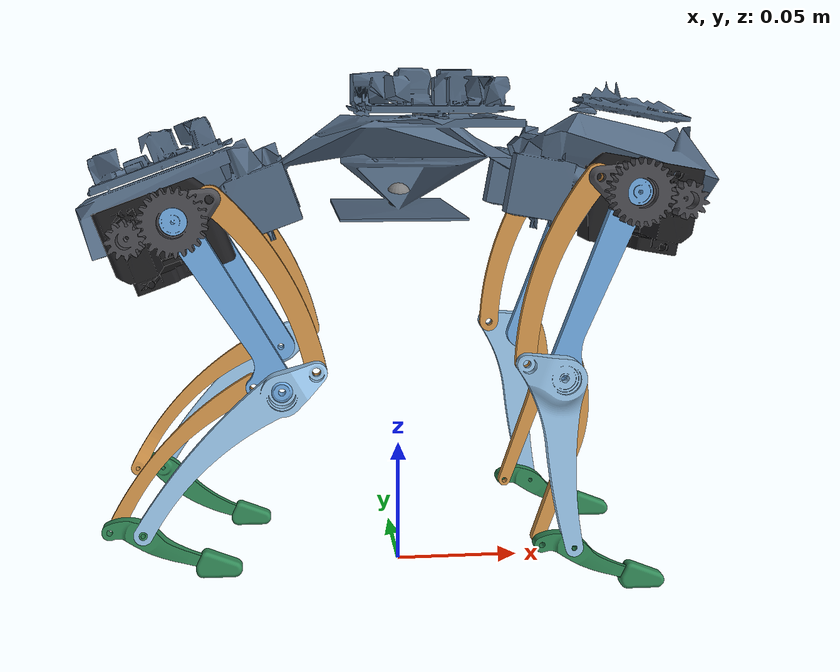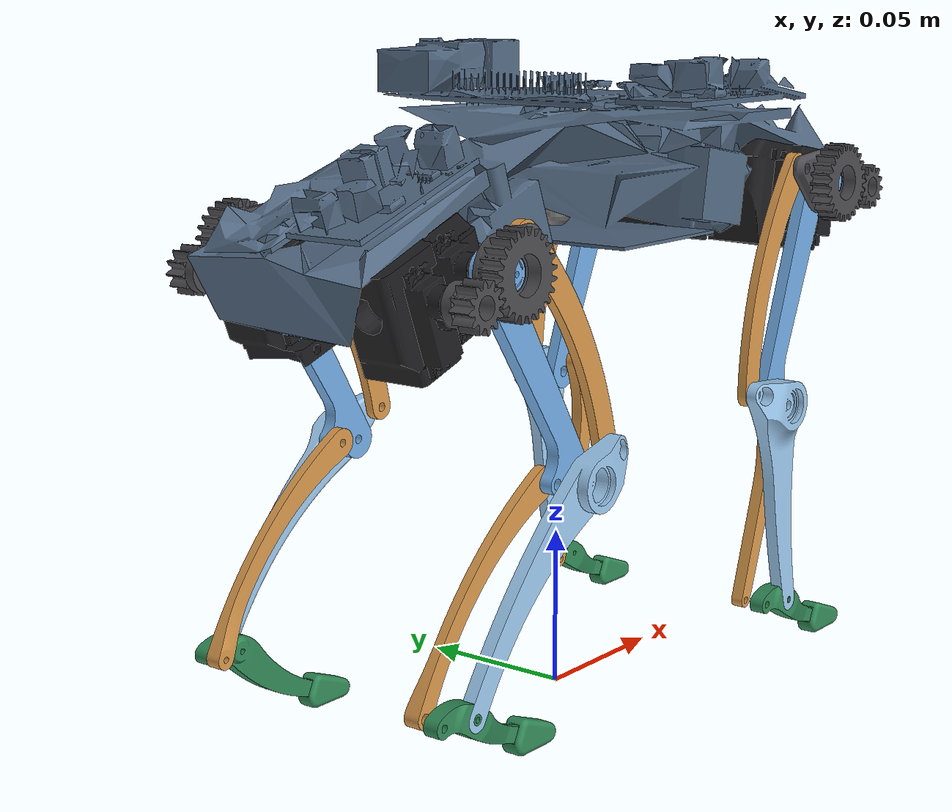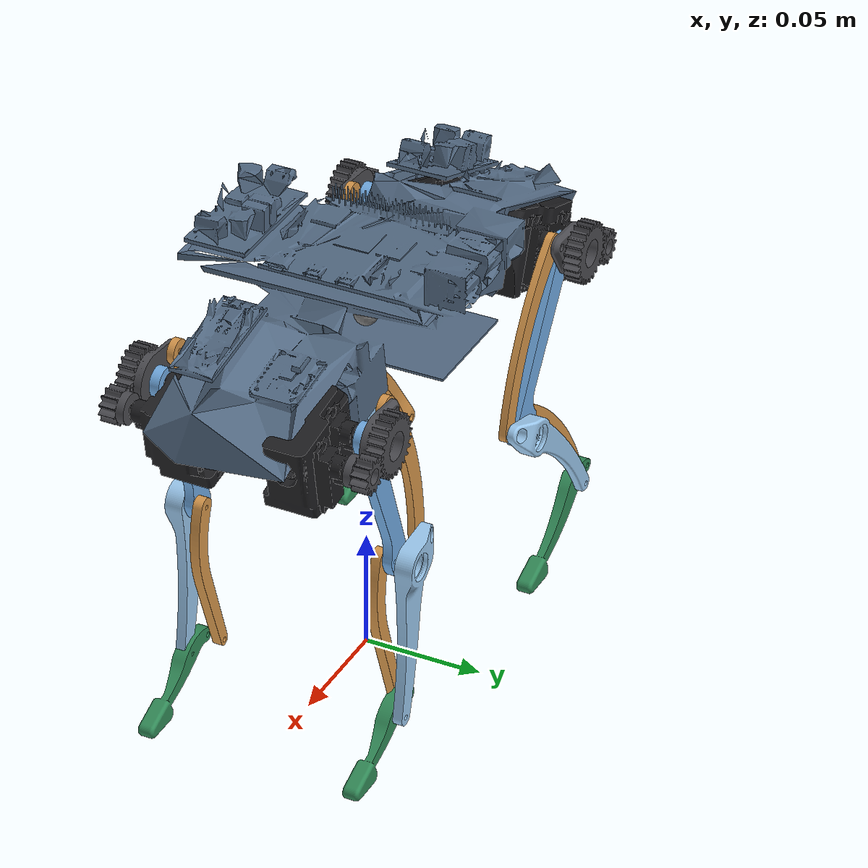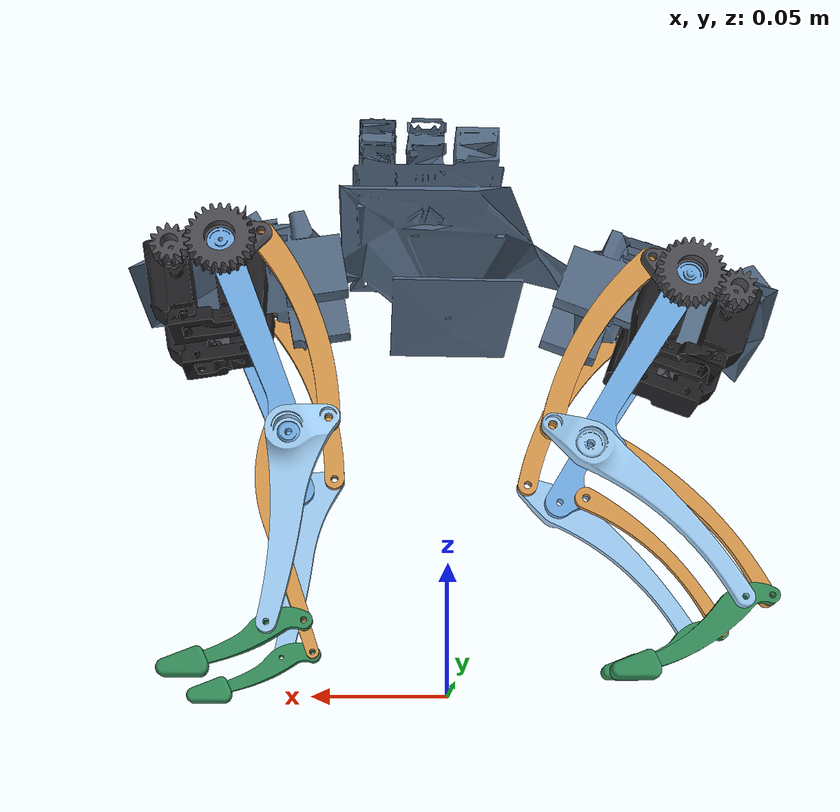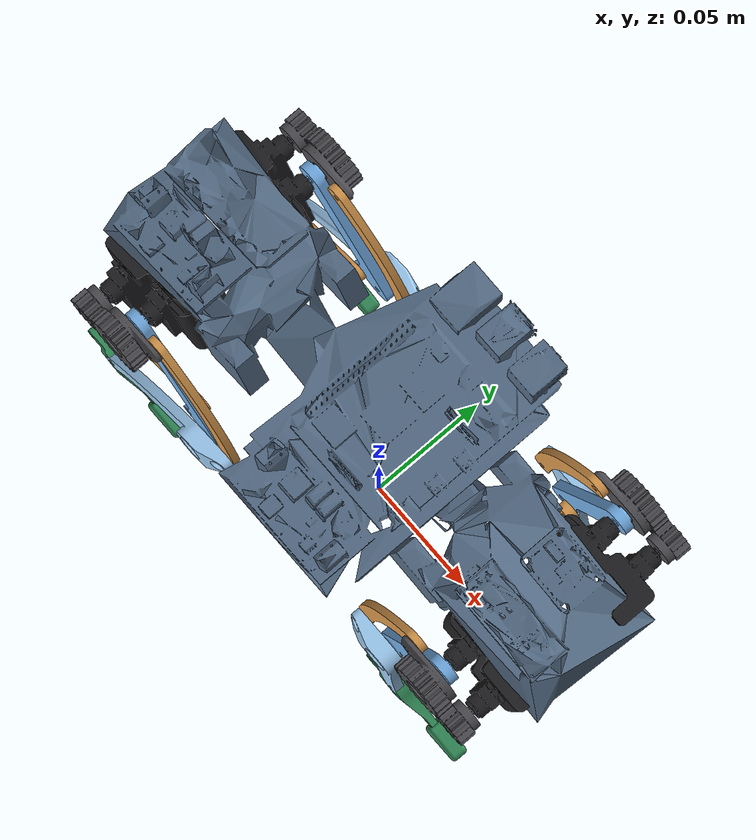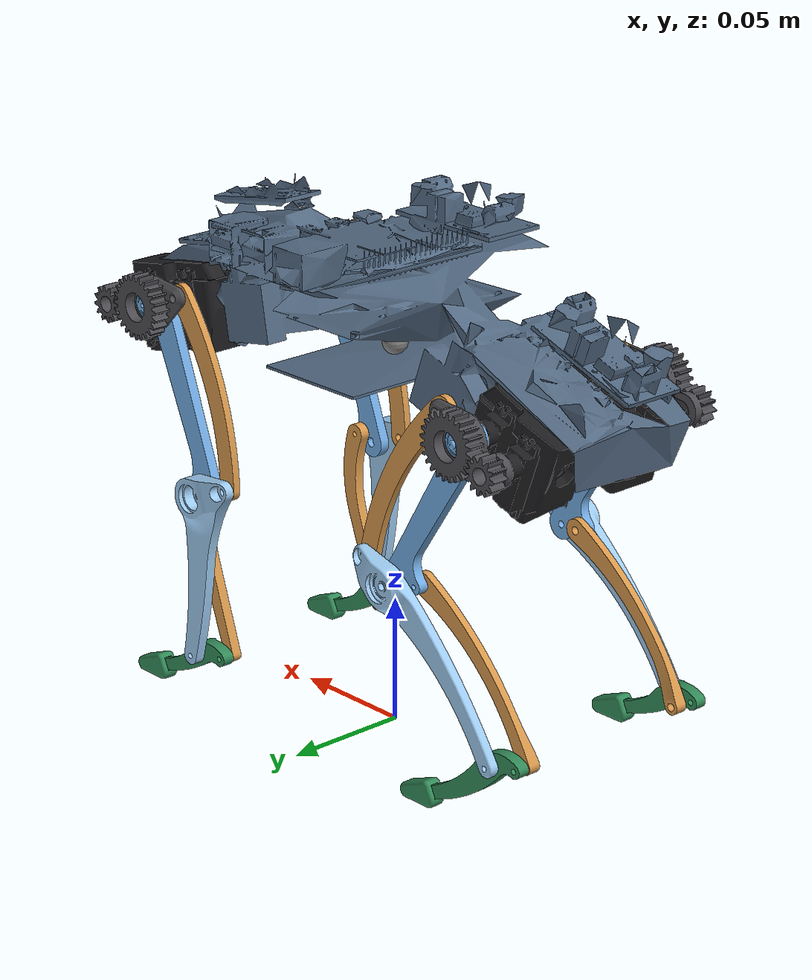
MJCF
<mujoco model="fox">
  <compiler angle="radian" meshdir="../meshes" autolimits="true"/>
  <option timestep="0.002" integrator="implicitfast"/>
  <default>
    <joint armature="0.0005" damping="0.01" frictionloss="0.002"/>
    <default class="pin"><joint armature="1e-06" damping="0.0001" frictionloss="0"/></default>
    <position kp="5" kv="0.08" forcerange="-0.47 0.47" inheritrange="1"/>
    <equality solref="0.004 1" solimp="0.999 0.9999 0.0005 0.5 2"/>
    <default class="visual"><geom type="mesh" contype="0" conaffinity="0" group="2" density="0"/></default>
    <default class="collision"><geom type="mesh" contype="1" conaffinity="0" group="3" density="0" friction="1.0 0.02 0.01" condim="3"/></default>
  </default>
  <asset>
    <mesh name="base_vis" file="visual/base.stl"/>
    <mesh name="base_col" file="collision/base.stl"/>
    <mesh name="FL_hip_vis" file="visual/FL_hip.stl"/>
    <mesh name="FL_hip_col" file="collision/FL_hip.stl"/>
    <mesh name="FL_pinion_vis" file="visual/FL_pinion.stl"/>
    <mesh name="FL_pinion_col" file="collision/FL_pinion.stl"/>
    <mesh name="FL_gear_vis" file="visual/FL_gear.stl"/>
    <mesh name="FL_gear_col" file="collision/FL_gear.stl"/>
    <mesh name="FL_femur_vis" file="visual/FL_femur.stl"/>
    <mesh name="FL_femur_col" file="collision/FL_femur.stl"/>
    <mesh name="FL_quad_vis" file="visual/FL_quad.stl"/>
    <mesh name="FL_quad_col" file="collision/FL_quad.stl"/>
    <mesh name="FL_tibia_vis" file="visual/FL_tibia.stl"/>
    <mesh name="FL_tibia_col" file="collision/FL_tibia.stl"/>
    <mesh name="FL_foot_vis" file="visual/FL_foot.stl"/>
    <mesh name="FL_foot_col" file="collision/FL_foot.stl"/>
    <mesh name="FL_link_vis" file="visual/FL_link.stl"/>
    <mesh name="FL_link_col" file="collision/FL_link.stl"/>
    <mesh name="FR_hip_vis" file="visual/FR_hip.stl"/>
    <mesh name="FR_hip_col" file="collision/FR_hip.stl"/>
    <mesh name="FR_pinion_vis" file="visual/FR_pinion.stl"/>
    <mesh name="FR_pinion_col" file="collision/FR_pinion.stl"/>
    <mesh name="FR_gear_vis" file="visual/FR_gear.stl"/>
    <mesh name="FR_gear_col" file="collision/FR_gear.stl"/>
    <mesh name="FR_femur_vis" file="visual/FR_femur.stl"/>
    <mesh name="FR_femur_col" file="collision/FR_femur.stl"/>
    <mesh name="FR_quad_vis" file="visual/FR_quad.stl"/>
    <mesh name="FR_quad_col" file="collision/FR_quad.stl"/>
    <mesh name="FR_tibia_vis" file="visual/FR_tibia.stl"/>
    <mesh name="FR_tibia_col" file="collision/FR_tibia.stl"/>
    <mesh name="FR_foot_vis" file="visual/FR_foot.stl"/>
    <mesh name="FR_foot_col" file="collision/FR_foot.stl"/>
    <mesh name="FR_link_vis" file="visual/FR_link.stl"/>
    <mesh name="FR_link_col" file="collision/FR_link.stl"/>
    <mesh name="RL_hip_vis" file="visual/RL_hip.stl"/>
    <mesh name="RL_hip_col" file="collision/RL_hip.stl"/>
    <mesh name="RL_pinion_vis" file="visual/RL_pinion.stl"/>
    <mesh name="RL_pinion_col" file="collision/RL_pinion.stl"/>
    <mesh name="RL_gear_vis" file="visual/RL_gear.stl"/>
    <mesh name="RL_gear_col" file="collision/RL_gear.stl"/>
    <mesh name="RL_femur_vis" file="visual/RL_femur.stl"/>
    <mesh name="RL_femur_col" file="collision/RL_femur.stl"/>
    <mesh name="RL_quad_vis" file="visual/RL_quad.stl"/>
    <mesh name="RL_quad_col" file="collision/RL_quad.stl"/>
    <mesh name="RL_tibia_vis" file="visual/RL_tibia.stl"/>
    <mesh name="RL_tibia_col" file="collision/RL_tibia.stl"/>
    <mesh name="RL_foot_vis" file="visual/RL_foot.stl"/>
    <mesh name="RL_foot_col" file="collision/RL_foot.stl"/>
    <mesh name="RL_link_vis" file="visual/RL_link.stl"/>
    <mesh name="RL_link_col" file="collision/RL_link.stl"/>
    <mesh name="RR_hip_vis" file="visual/RR_hip.stl"/>
    <mesh name="RR_hip_col" file="collision/RR_hip.stl"/>
    <mesh name="RR_pinion_vis" file="visual/RR_pinion.stl"/>
    <mesh name="RR_pinion_col" file="collision/RR_pinion.stl"/>
    <mesh name="RR_gear_vis" file="visual/RR_gear.stl"/>
    <mesh name="RR_gear_col" file="collision/RR_gear.stl"/>
    <mesh name="RR_femur_vis" file="visual/RR_femur.stl"/>
    <mesh name="RR_femur_col" file="collision/RR_femur.stl"/>
    <mesh name="RR_quad_vis" file="visual/RR_quad.stl"/>
    <mesh name="RR_quad_col" file="collision/RR_quad.stl"/>
    <mesh name="RR_tibia_vis" file="visual/RR_tibia.stl"/>
    <mesh name="RR_tibia_col" file="collision/RR_tibia.stl"/>
    <mesh name="RR_foot_vis" file="visual/RR_foot.stl"/>
    <mesh name="RR_foot_col" file="collision/RR_foot.stl"/>
    <mesh name="RR_link_vis" file="visual/RR_link.stl"/>
    <mesh name="RR_link_col" file="collision/RR_link.stl"/>
  </asset>
  <worldbody>
    <body name="base" pos="0.000000 0.000000 0.152840">
      <freejoint name="root"/>
      <inertial pos="-0.000626 0.000923 0.016196" mass="0.330454" fullinertia="2.7830e-04 1.4975e-03 1.6114e-03 -4.0202e-06 -9.4188e-05 -9.4332e-06"/>
      <geom class="visual" mesh="base_vis" rgba="0.33 0.42 0.52 1"/>
      <geom class="collision" mesh="base_col"/>
      <site name="imu" pos="0 0 0"/>
      <body name="FL_hip" pos="0.071686 0.024238 0.007390">
        <joint name="FL_hip_joint" axis="0.984808 0 -0.173648" range="-0.5000 0.5000"/>
        <inertial pos="0.019700 0.000171 -0.009614" mass="0.029637" fullinertia="3.9041e-06 6.8017e-06 6.0682e-06 -8.1673e-07 1.8878e-07 -1.3949e-07"/>
        <geom class="visual" mesh="FL_hip_vis" rgba="0.12 0.12 0.13 1"/>
        <geom class="collision" mesh="FL_hip_col"/>
        <body name="FL_femur" pos="0.013073 0.017273 -0.002610">
          <joint name="FL_femur_joint" axis="0 1 0" range="-1.2000 1.2000"/>
          <inertial pos="-0.012342 0.001294 -0.031474" mass="0.004892" fullinertia="2.9926e-06 3.4422e-06 4.9069e-07 -2.7059e-08 -1.1146e-06 -6.8278e-08"/>
          <geom class="visual" mesh="FL_femur_vis" rgba="0.45 0.68 0.9 1"/>
          <geom class="collision" mesh="FL_femur_col"/>
          <body name="FL_tibia" pos="-0.026269 0.000000 -0.070249">
            <joint name="FL_knee_joint" axis="0 1 0" class="pin" range="-1.2000 1.2000"/>
            <inertial pos="-0.001466 0.006306 -0.020112" mass="0.005495" fullinertia="2.6534e-06 2.8151e-06 1.9387e-07 3.8980e-09 3.4710e-07 -5.8545e-08"/>
            <geom class="visual" mesh="FL_tibia_vis" rgba="0.62 0.8 0.95 1"/>
            <geom class="collision" mesh="FL_tibia_col"/>
            <body name="FL_foot" pos="0.005365 0.002750 -0.067459">
              <joint name="FL_ankle_joint" axis="-0 1 0" class="pin"/>
              <inertial pos="0.010962 -0.001369 -0.006584" mass="0.002518" fullinertia="1.2566e-07 6.3852e-07 5.2978e-07 -1.9020e-08 2.2656e-07 9.0232e-09"/>
              <geom class="visual" mesh="FL_foot_vis" rgba="0.2 0.55 0.35 1"/>
              <geom class="collision" mesh="FL_foot_col"/>
            </body>
          </body>
          <body name="FL_link" pos="-0.021174 -0.001350 -0.067174">
            <joint name="FL_link_pin_joint" axis="0 1 -0" class="pin"/>
            <inertial pos="-0.001602 -0.002100 -0.031180" mass="0.002351" fullinertia="1.0619e-06 1.1189e-06 6.3295e-08 6.9389e-22 -2.0390e-07 -2.7756e-21"/>
            <geom class="visual" mesh="FL_link_vis" rgba="0.85 0.6 0.3 1"/>
            <geom class="collision" mesh="FL_link_col"/>
          </body>
        </body>
        <body name="FL_pinion" pos="0.030851 0.021574 -0.005440">
          <joint name="FL_pinion_joint" axis="0 1 0" range="-1.5000 1.5000"/>
          <inertial pos="-0.000000 0.003991 0.000000" mass="0.001242" fullinertia="2.4968e-08 2.8457e-08 2.4968e-08 4.7115e-15 -4.5171e-15 1.3147e-13"/>
          <geom class="visual" mesh="FL_pinion_vis" rgba="0.3 0.3 0.32 1"/>
          <geom class="collision" mesh="FL_pinion_col"/>
        </body>
        <body name="FL_gear" pos="0.013073 0.017273 -0.002610">
          <joint name="FL_gear_joint" axis="0 1 0" class="pin"/>
          <inertial pos="-0.000793 0.008634 0.000296" mass="0.004045" fullinertia="1.9190e-07 3.4494e-07 2.2208e-07 -1.1349e-08 1.3114e-08 4.2423e-09"/>
          <geom class="visual" mesh="FL_gear_vis" rgba="0.3 0.3 0.32 1"/>
          <geom class="collision" mesh="FL_gear_col"/>
          <body name="FL_quad" pos="-0.014050 0.003650 0.005252">
            <joint name="FL_crank_pin_joint" axis="-0 1 -0" class="pin"/>
            <inertial pos="-0.015922 -0.001600 -0.031734" mass="0.002608" fullinertia="1.2810e-06 1.4922e-06 2.1513e-07 -9.7145e-21 -4.8116e-07 1.0755e-20"/>
            <geom class="visual" mesh="FL_quad_vis" rgba="0.85 0.6 0.3 1"/>
            <geom class="collision" mesh="FL_quad_col"/>
          </body>
        </body>
      </body>
      <body name="FR_hip" pos="0.071686 -0.024262 0.007390">
        <joint name="FR_hip_joint" axis="0.984808 0 -0.173648" range="-0.5000 0.5000"/>
        <inertial pos="0.019655 -0.000085 -0.009564" mass="0.029637" fullinertia="3.8948e-06 6.8294e-06 6.0767e-06 7.9968e-07 2.0276e-07 1.4076e-07"/>
        <geom class="visual" mesh="FR_hip_vis" rgba="0.12 0.12 0.13 1"/>
        <geom class="collision" mesh="FR_hip_col"/>
        <body name="FR_femur" pos="0.013073 -0.017248 -0.002610">
          <joint name="FR_femur_joint" axis="0 1 0" range="-1.2000 1.2000"/>
          <inertial pos="-0.012344 -0.001294 -0.031473" mass="0.004892" fullinertia="2.9930e-06 3.4425e-06 4.9053e-07 2.7070e-08 -1.1144e-06 6.8262e-08"/>
          <geom class="visual" mesh="FR_femur_vis" rgba="0.45 0.68 0.9 1"/>
          <geom class="collision" mesh="FR_femur_col"/>
          <body name="FR_tibia" pos="-0.026269 0.000000 -0.070249">
            <joint name="FR_knee_joint" axis="0 1 0" class="pin" range="-1.2000 1.2000"/>
            <inertial pos="-0.001384 -0.006335 -0.018973" mass="0.005825" fullinertia="2.7820e-06 2.9461e-06 1.9727e-07 -3.6641e-09 3.3799e-07 6.1768e-08"/>
            <geom class="visual" mesh="FR_tibia_vis" rgba="0.62 0.8 0.95 1"/>
            <geom class="collision" mesh="FR_tibia_col"/>
            <body name="FR_foot" pos="0.005365 -0.002750 -0.067459">
              <joint name="FR_ankle_joint" axis="-0 1 0" class="pin"/>
              <inertial pos="0.010962 0.001369 -0.006584" mass="0.002518" fullinertia="1.2566e-07 6.3852e-07 5.2978e-07 1.9020e-08 2.2656e-07 -9.0234e-09"/>
              <geom class="visual" mesh="FR_foot_vis" rgba="0.2 0.55 0.35 1"/>
              <geom class="collision" mesh="FR_foot_col"/>
            </body>
          </body>
          <body name="FR_link" pos="-0.021174 0.001350 -0.067174">
            <joint name="FR_link_pin_joint" axis="0 1 -0" class="pin"/>
            <inertial pos="-0.001602 0.002100 -0.031180" mass="0.002351" fullinertia="1.0619e-06 1.1189e-06 6.3295e-08 -6.9389e-22 -2.0390e-07 8.3267e-21"/>
            <geom class="visual" mesh="FR_link_vis" rgba="0.85 0.6 0.3 1"/>
            <geom class="collision" mesh="FR_link_col"/>
          </body>
        </body>
        <body name="FR_pinion" pos="0.030860 -0.021331 -0.005441">
          <joint name="FR_pinion_joint" axis="0 1 0" range="-1.5000 1.5000"/>
          <inertial pos="-0.000001 -0.004202 0.000000" mass="0.001242" fullinertia="2.5036e-08 2.8457e-08 2.5036e-08 1.5650e-11 -5.3224e-15 -2.9780e-12"/>
          <geom class="visual" mesh="FR_pinion_vis" rgba="0.3 0.3 0.32 1"/>
          <geom class="collision" mesh="FR_pinion_col"/>
        </body>
        <body name="FR_gear" pos="0.013073 -0.017248 -0.002610">
          <joint name="FR_gear_joint" axis="0 1 0" class="pin"/>
          <inertial pos="-0.000793 -0.008635 0.000296" mass="0.004045" fullinertia="1.9190e-07 3.4494e-07 2.2208e-07 1.1349e-08 1.3114e-08 -4.2423e-09"/>
          <geom class="visual" mesh="FR_gear_vis" rgba="0.3 0.3 0.32 1"/>
          <geom class="collision" mesh="FR_gear_col"/>
          <body name="FR_quad" pos="-0.014050 -0.003650 0.005252">
            <joint name="FR_crank_pin_joint" axis="-0 1 -0" class="pin"/>
            <inertial pos="-0.015922 0.001600 -0.031734" mass="0.002608" fullinertia="1.2810e-06 1.4922e-06 2.1513e-07 1.3184e-20 -4.8116e-07 -3.4694e-21"/>
            <geom class="visual" mesh="FR_quad_vis" rgba="0.85 0.6 0.3 1"/>
            <geom class="collision" mesh="FR_quad_col"/>
          </body>
        </body>
      </body>
      <body name="RL_hip" pos="-0.073606 0.024238 -0.000351">
        <joint name="RL_hip_joint" axis="0.939693 0 0.34202" range="-0.5000 0.5000"/>
        <inertial pos="-0.017765 0.000192 -0.012504" mass="0.030137" fullinertia="4.1667e-06 7.0408e-06 6.0618e-06 8.3795e-07 -4.9538e-07 -4.1078e-09"/>
        <geom class="visual" mesh="RL_hip_vis" rgba="0.12 0.12 0.13 1"/>
        <geom class="collision" mesh="RL_hip_col"/>
        <body name="RL_femur" pos="-0.012394 0.017273 -0.004429">
          <joint name="RL_femur_joint" axis="-0 1 -0" range="-1.2000 1.2000"/>
          <inertial pos="0.017979 0.001290 -0.030090" mass="0.005150" fullinertia="2.8108e-06 3.7559e-06 9.8944e-07 4.2601e-08 1.5752e-06 -7.1122e-08"/>
          <geom class="visual" mesh="RL_femur_vis" rgba="0.45 0.68 0.9 1"/>
          <geom class="collision" mesh="RL_femur_col"/>
          <body name="RL_tibia" pos="0.038069 0.001750 -0.064620">
            <joint name="RL_knee_joint" axis="0 1 0" class="pin" range="-1.2000 0.7400"/>
            <inertial pos="-0.015755 0.004603 -0.013635" mass="0.005301" fullinertia="1.6361e-06 3.5704e-06 1.9640e-06 -5.2016e-08 -1.6942e-06 -4.4316e-08"/>
            <geom class="visual" mesh="RL_tibia_vis" rgba="0.62 0.8 0.95 1"/>
            <geom class="collision" mesh="RL_tibia_col"/>
            <body name="RL_foot" pos="-0.052566 0.001000 -0.053496">
              <joint name="RL_ankle_joint" axis="-0 1 0" class="pin"/>
              <inertial pos="0.017232 -0.001193 -0.012323" mass="0.003072" fullinertia="3.3629e-07 1.2058e-06 8.8582e-07 -2.1672e-08 5.0888e-07 1.3432e-08"/>
              <geom class="visual" mesh="RL_foot_vis" rgba="0.2 0.55 0.35 1"/>
              <geom class="collision" mesh="RL_foot_col"/>
            </body>
          </body>
          <body name="RL_link" pos="0.027590 -0.000850 -0.063328">
            <joint name="RL_link_pin_joint" axis="0 1 0" class="pin"/>
            <inertial pos="-0.027939 -0.002270 -0.023343" mass="0.002056" fullinertia="6.7350e-07 1.3233e-06 6.5421e-07 -8.0513e-09 -6.4372e-07 -9.4510e-09"/>
            <geom class="visual" mesh="RL_link_vis" rgba="0.85 0.6 0.3 1"/>
            <geom class="collision" mesh="RL_link_col"/>
          </body>
        </body>
        <body name="RL_pinion" pos="-0.029309 0.021574 -0.010585">
          <joint name="RL_pinion_joint" axis="-0 1 0" range="-1.5000 1.5000"/>
          <inertial pos="0.000000 0.003991 -0.000001" mass="0.001242" fullinertia="2.4967e-08 2.8456e-08 2.4967e-08 1.7687e-13 9.7104e-15 2.1886e-13"/>
          <geom class="visual" mesh="RL_pinion_vis" rgba="0.3 0.3 0.32 1"/>
          <geom class="collision" mesh="RL_pinion_col"/>
        </body>
        <body name="RL_gear" pos="-0.012394 0.017273 -0.004429">
          <joint name="RL_gear_joint" axis="-0 1 -0" class="pin"/>
          <inertial pos="0.000730 0.008634 0.000430" mass="0.004045" fullinertia="1.9729e-07 3.4494e-07 2.1668e-07 1.0439e-08 -1.7486e-08 6.1494e-09"/>
          <geom class="visual" mesh="RL_gear_vis" rgba="0.3 0.3 0.32 1"/>
          <geom class="collision" mesh="RL_gear_col"/>
          <body name="RL_quad" pos="0.012924 0.003650 0.007614">
            <joint name="RL_crank_pin_joint" axis="0 1 0" class="pin"/>
            <inertial pos="0.021186 -0.001600 -0.028498" mass="0.002615" fullinertia="1.0914e-06 1.5019e-06 4.1433e-07 -6.9389e-22 6.3852e-07 2.4286e-21"/>
            <geom class="visual" mesh="RL_quad_vis" rgba="0.85 0.6 0.3 1"/>
            <geom class="collision" mesh="RL_quad_col"/>
          </body>
        </body>
      </body>
      <body name="RR_hip" pos="-0.073382 -0.024238 -0.000188">
        <joint name="RR_hip_joint" axis="0.939693 0 0.34202" range="-0.5000 0.5000"/>
        <inertial pos="-0.017248 0.000038 -0.013309" mass="0.031628" fullinertia="4.4267e-06 7.5621e-06 6.4034e-06 -8.8515e-07 -4.6400e-07 5.1350e-08"/>
        <geom class="visual" mesh="RR_hip_vis" rgba="0.12 0.12 0.13 1"/>
        <geom class="collision" mesh="RR_hip_col"/>
        <body name="RR_femur" pos="-0.012618 -0.017522 -0.004593">
          <joint name="RR_femur_joint" axis="-0 1 -0" range="-1.2000 1.2000"/>
          <inertial pos="0.018067 -0.001017 -0.030156" mass="0.005087" fullinertia="2.7482e-06 3.6800e-06 9.7355e-07 -4.0090e-08 1.5469e-06 6.6705e-08"/>
          <geom class="visual" mesh="RR_femur_vis" rgba="0.45 0.68 0.9 1"/>
          <geom class="collision" mesh="RR_femur_col"/>
          <body name="RR_tibia" pos="0.038069 -0.001500 -0.064620">
            <joint name="RR_knee_joint" axis="0 1 0" class="pin" range="-1.2000 0.7400"/>
            <inertial pos="-0.016914 -0.004472 -0.014685" mass="0.004954" fullinertia="1.5834e-06 3.4634e-06 1.9080e-06 4.5120e-08 -1.6434e-06 3.7620e-08"/>
            <geom class="visual" mesh="RR_tibia_vis" rgba="0.62 0.8 0.95 1"/>
            <geom class="collision" mesh="RR_tibia_col"/>
            <body name="RR_foot" pos="-0.052566 -0.001000 -0.053496">
              <joint name="RR_ankle_joint" axis="-0 1 0" class="pin"/>
              <inertial pos="0.017673 0.001177 -0.012590" mass="0.003009" fullinertia="3.2552e-07 1.1650e-06 8.5545e-07 2.0770e-08 4.9138e-07 -1.2848e-08"/>
              <geom class="visual" mesh="RR_foot_vis" rgba="0.2 0.55 0.35 1"/>
              <geom class="collision" mesh="RR_foot_col"/>
            </body>
          </body>
          <body name="RR_link" pos="0.027590 0.001100 -0.063328">
            <joint name="RR_link_pin_joint" axis="0 1 0" class="pin"/>
            <inertial pos="-0.027692 0.002257 -0.022978" mass="0.002011" fullinertia="6.3638e-07 1.2567e-06 6.2457e-07 7.3076e-09 -6.1112e-07 8.5611e-09"/>
            <geom class="visual" mesh="RR_link_vis" rgba="0.85 0.6 0.3 1"/>
            <geom class="collision" mesh="RR_link_col"/>
          </body>
        </body>
        <body name="RR_pinion" pos="-0.029532 -0.021572 -0.010749">
          <joint name="RR_pinion_joint" axis="-0 1 0" range="-1.5000 1.5000"/>
          <inertial pos="0.000006 -0.003996 -0.000003" mass="0.001240" fullinertia="2.4955e-08 2.8452e-08 2.4955e-08 1.5662e-11 1.5301e-14 -7.6251e-12"/>
          <geom class="visual" mesh="RR_pinion_vis" rgba="0.3 0.3 0.32 1"/>
          <geom class="collision" mesh="RR_pinion_col"/>
        </body>
        <body name="RR_gear" pos="-0.012618 -0.017522 -0.004593">
          <joint name="RR_gear_joint" axis="-0 1 -0" class="pin"/>
          <inertial pos="0.000730 -0.008385 0.000430" mass="0.004045" fullinertia="1.9729e-07 3.4494e-07 2.1668e-07 -1.0439e-08 -1.7486e-08 -6.1494e-09"/>
          <geom class="visual" mesh="RR_gear_vis" rgba="0.3 0.3 0.32 1"/>
          <geom class="collision" mesh="RR_gear_col"/>
          <body name="RR_quad" pos="0.012924 -0.003400 0.007614">
            <joint name="RR_crank_pin_joint" axis="0 1 0" class="pin"/>
            <inertial pos="0.021316 0.001600 -0.028638" mass="0.002586" fullinertia="1.0647e-06 1.4634e-06 4.0257e-07 6.2450e-21 6.2120e-07 4.1633e-21"/>
            <geom class="visual" mesh="RR_quad_vis" rgba="0.85 0.6 0.3 1"/>
            <geom class="collision" mesh="RR_quad_col"/>
          </body>
        </body>
      </body>
    </body>
  </worldbody>
  <equality>
    <connect name="FL_quad_pin" body1="FL_quad" body2="FL_tibia" anchor="-0.026268 -0.000500 -0.070248"/>
    <connect name="FL_foot_pin" body1="FL_link" body2="FL_foot" anchor="-0.012209 0.000400 -0.069223"/>
    <connect name="FR_quad_pin" body1="FR_quad" body2="FR_tibia" anchor="-0.026269 0.000500 -0.070248"/>
    <connect name="FR_foot_pin" body1="FR_link" body2="FR_foot" anchor="-0.012209 -0.000400 -0.069223"/>
    <connect name="RL_quad_pin" body1="RL_quad" body2="RL_tibia" anchor="0.038068 -0.000500 -0.064620"/>
    <connect name="RL_foot_pin" body1="RL_link" body2="RL_foot" anchor="-0.052566 -0.000600 -0.053496"/>
    <connect name="RR_quad_pin" body1="RR_quad" body2="RR_tibia" anchor="0.038068 0.000500 -0.064620"/>
    <connect name="RR_foot_pin" body1="RR_link" body2="RR_foot" anchor="-0.052566 0.000600 -0.053496"/>
    <joint name="FL_gear_mesh" joint1="FL_gear_joint" joint2="FL_pinion_joint" polycoef="0 -0.5 0 0 0"/>
    <joint name="FR_gear_mesh" joint1="FR_gear_joint" joint2="FR_pinion_joint" polycoef="0 -0.5 0 0 0"/>
    <joint name="RL_gear_mesh" joint1="RL_gear_joint" joint2="RL_pinion_joint" polycoef="0 -0.5 0 0 0"/>
    <joint name="RR_gear_mesh" joint1="RR_gear_joint" joint2="RR_pinion_joint" polycoef="0 -0.5 0 0 0"/>
  </equality>
  <actuator>
    <position name="FL_hip" joint="FL_hip_joint"/>
    <position name="FL_pivot" joint="FL_femur_joint"/>
    <position name="FL_gear" joint="FL_pinion_joint"/>
    <position name="FR_hip" joint="FR_hip_joint"/>
    <position name="FR_pivot" joint="FR_femur_joint"/>
    <position name="FR_gear" joint="FR_pinion_joint"/>
    <position name="RL_hip" joint="RL_hip_joint"/>
    <position name="RL_pivot" joint="RL_femur_joint"/>
    <position name="RL_gear" joint="RL_pinion_joint"/>
    <position name="RR_hip" joint="RR_hip_joint"/>
    <position name="RR_pivot" joint="RR_femur_joint"/>
    <position name="RR_gear" joint="RR_pinion_joint"/>
  </actuator>
  <sensor>
    <framequat name="imu_quat" objtype="site" objname="imu"/>
    <gyro name="imu_gyro" site="imu"/>
    <accelerometer name="imu_acc" site="imu"/>
  </sensor>
</mujoco>
